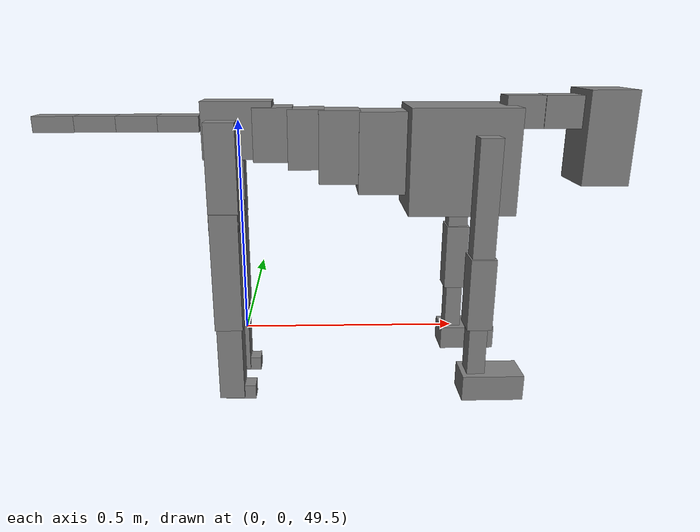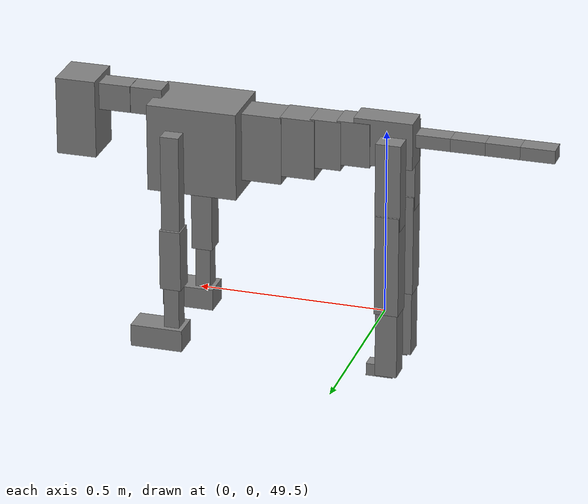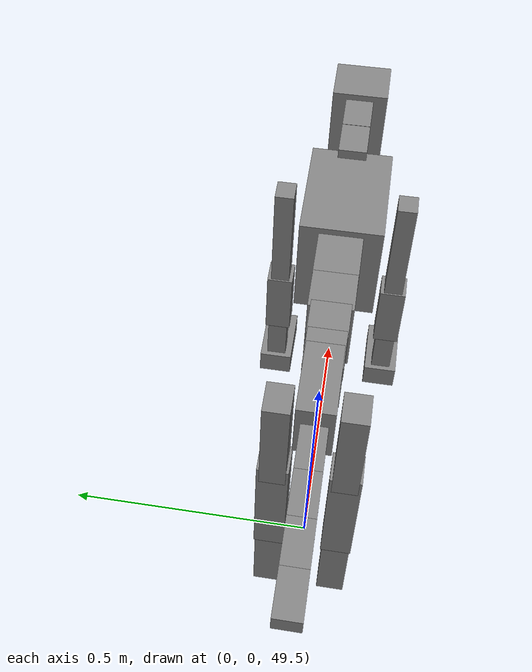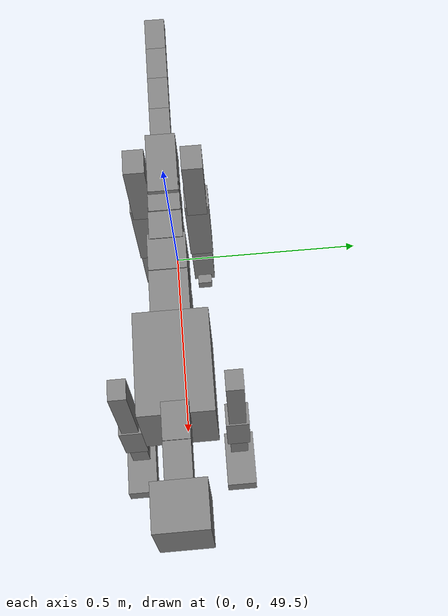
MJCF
<mujoco model="dog">

    <default>
        <joint armature="0.02" stiffness="1" damping="0.2" limited="true"/>
        <geom condim="3" friction="1 0.05 0.05" margin="0.01"/>
        <motor ctrllimited="true" ctrlrange="-1.0 1.0" forcelimited="true" gear="50"/>
    </default>

    <compiler inertiafromgeom="true" angle="radian"/>

    <option timestep="0.016" iterations="50" tolerance="1e-10" solver="Newton" jacobian="dense" cone="pyramidal"/>

    <size nconmax="20000" njmax="60000" nstack="5000000"/>
    <visual>
        <map force="0.1" zfar="30"/>
        <rgba haze="0.15 0.25 0.35 1"/>
        <quality shadowsize="2048"/>
        <global offwidth="800" offheight="800"/>
    </visual>

    <asset>
        <texture type="skybox" builtin="gradient" rgb1="0.3 0.5 0.7" rgb2="0 0 0" width="512" height="512"/>
        <texture name="texplane" type="2d" builtin="checker" rgb1=".2 .3 .4" rgb2=".1 0.15 0.2" width="512" height="512"
                 mark="cross" markrgb=".8 .8 .8"/>
        <texture name="texgeom" type="cube" builtin="flat" mark="cross" width="127" height="1278" rgb1="0.8 0.6 0.4"
                 rgb2="0.8 0.6 0.4" markrgb="1 1 1" random="0.01"/>

        <material name="matplane" reflectance="0.3" texture="texplane" texrepeat="1 1" texuniform="true"/>
        <material name="matgeom" texture="texgeom" texuniform="true" rgba="0.8 0.6 .4 1"/>
    </asset>

    <worldbody>
        <geom name="floor" pos="0 0 0" size="0 0 .25" type="plane" material="matplane" condim="3"/>

        <light directional="false" diffuse=".2 .2 .2" specular="0 0 0" pos="0 0 5" dir="0 0 -1" castshadow="false"/>
        <light mode="targetbodycom" target="torso" directional="false" diffuse=".8 .8 .8" specular="0.3 0.3 0.3"
               pos="0 0 4.0" dir="0 0 -1"/>

        <body name="root" pos="0 0 50">
            <freejoint name="root_1"/>
            <geom type="box" pos="0 0 -0.02" size="0.0774  0.0358  0.063" density="2030"/>

            <body name="spine1" pos="0.054 0 0">
                <joint name="spine1_y" axis="0 1 0" range="0 0.7" limited="true"/>
                <geom type="box" pos="0.02375 0 -0.03" size="0.04375  0.0375  0.05985" density="2030"/>

                <body name="spine2" pos="0.0612 0 0">
                    <joint name="spine2_y" axis="0 1 0" range="-0.15 0.15" limited="true"/>
                    <geom type="box" pos="0.03555  0  -0.04" size="0.04055  0.039  0.06615" density="2030"/>

                    <body name="spine3" pos="0.0730 0 0">
                        <joint name="spine3_y" axis="0 1 0" range="-0.15 0.15" limited="true"/>
                        <geom type="box" pos="0.03555  0  -0.057" size="0.04555  0.0445  0.081" density="2030"/>

                        <body name="spine4" pos="0.0780 0 0">
                            <joint name="spine4_y" axis="0 1 0" range="-0.15 0.15" limited="true"/>
                            <geom type="box" pos="0.05265  0  -0.07" size="0.05265  0.045  0.09135" density="2030"/>

                            <body name="torso" pos="0.1082 0 0">
                                <joint name="torso_y" axis="0 1 0" range="-0.15 0.15" limited="true"/>
                                <geom type="box" pos="0.11925  0  -0.085" size="0.11925  0.085  0.11745"
                                      density="2030"/>

                                <body name="neck1" pos="0.2160  0   0.0180">
                                    <joint name="neck1_y" axis="0 1 0" range="-1.2  -1" limited="true"/>
                                    <geom type="box" pos="0.0423  0  0" size="0.0423  0.03  0.036" density="2325"/>

                                    <body name="neck2" pos="0.0853  0  0">
                                        <joint name="neck2_y" axis="0 1 0" range="0.1  0" limited="true"/>
                                        <geom type="box" pos="0.0423  0  0" size="0.0423  0.03  0.036" density="2325"/>

                                        <body name="head" pos="0.0853  0  0">
                                            <joint name="head_y" axis="0 1 0" range="-0.3  -0.2" limited="true"/>
                                            <geom type="box" pos="0.0531  0  -0.055" size="0.0531  0.06  0.1044"
                                                  density="4030"/>

                                        </body>
                                    </body>
                                </body>

                                <body name="front_shoulder" pos="0.156  0   -0.0480">
                                    <joint name="front_shoulder_y" axis="0 1 0" range="-1 1.5" limited="true"/>
                                    <geom type="box" pos="0 0.13 -0.1159" size="0.0243  0.0208  0.1425" density="1158"/>
                                    <geom type="box" pos="0 -0.13 -0.1159" size="0.0243  0.0208  0.1425"
                                          density="1158"/>

                                    <body name="front_elbow" pos="0  0  -0.2318">
                                        <joint name="front_elbow_y" axis="0 1 0" range="-2 0" limited="true"/>
                                        <geom type="box" pos="0 0.13 -0.0817" size="0.0280  0.0287  0.0817"
                                              density="1081"/>
                                        <geom type="box" pos="0 -0.13 -0.0817" size="0.0280  0.0287  0.0817"
                                              density="1081"/>

                                        <body name="front_wrist" pos="0  0  -0.1633">
                                            <joint name="front_wrist_y" axis="0 1 0" range="-0.2 0" limited="true"/>
                                            <geom type="box" pos="0 0.13 -0.0628" size="0.0201  0.0224  0.0760"
                                                  density="1664"/>
                                            <geom type="box" pos="0 -0.13 -0.0628" size="0.0201  0.0224  0.0760"
                                                  density="1664"/>

                                            <body name="front_finger_end" pos="0  0  -0.1256">
                                                <joint name="front_finger_y" axis="0 1 0" range="-0.4 1"
                                                       limited="true"/>
                                                <geom type="box" pos="0.0378  0.13  -0.0145"
                                                      size="0.0694  0.0378  0.0295" density="1515"/>
                                                <geom type="box" pos="0.0378  -0.13  -0.0145"
                                                      size="0.0694  0.0378  0.0295" density="1515"/>

                                            </body>

                                        </body>
                                    </body>
                                </body>

                            </body>
                        </body>
                    </body>
                </body>
            </body>

            <body name="back_hip" pos="-0.03 0 -0.018">
                <joint name="back_hip_y" axis="0 1 0" range="-1.5 0.3" limited="true"/>
                <geom type="box" pos="0 0.07 -0.0946" size="0.0330  0.0259  0.1174" density="1154"/>
                <geom type="box" pos="0 -0.07 -0.0946" size="0.0330  0.0259  0.1174" density="1154"/>

                <body name="back_knee" pos="0  0  -0.1892">
                    <joint name="back_knee_y" axis="0 1 0" range="0 2.8" limited="true"/>
                    <geom type="box" pos="0 0.07 -0.1211" size="0.0316  0.0312  0.1366" density="1227"/>
                    <geom type="box" pos="0 -0.07 -0.1211" size="0.0316  0.0312  0.1366" density="1227"/>

                    <body name="back_ankle" pos="0  0  -0.2421">
                        <joint name="back_ankle_y" axis="0 1 0" range="-2.2 0" limited="true"/>
                        <geom type="box" pos="0 0.07 -0.0898" size="0.0288  0.0288  0.1010" density="1284"/>
                        <geom type="box" pos="0 -0.07 -0.0898" size="0.0288  0.0288  0.1010" density="1284"/>

                        <body name="back_toe_end" pos="0  0  -0.1796">
                            <joint name="back_toe_y" axis="0 1 0" range="-0.4 1" limited="true"/>
                            <geom type="box" pos="0.0194  0.07  -0.0019" size="0.0355  0.0194  0.0169" density="1515"/>
                            <geom type="box" pos="0.0194  -0.07  -0.0019" size="0.0355  0.0194  0.0169" density="1515"/>

                        </body>
                    </body>
                </body>
            </body>

            <body name="tail1" pos="-0.074 0 -0.006">
                <joint name="tail1_y" axis="0 1 0" range="-0.2 0.2" limited="true"/>
                <geom type="box" pos="-0.0536  0  0" size="0.045  0.025  0.0175" density="1587"/>

                <body name="tail2" pos="-0.09 0 0">
                    <joint name="tail2_y" axis="0 1 0" range="-0.2 0.2" limited="true"/>
                    <geom type="box" pos="-0.0536  0  0" size="0.045  0.025  0.0175" density="1587"/>

                    <body name="tail3" pos="-0.09 0 0">
                        <joint name="tail3_y" axis="0 1 0" range="-0.2 0.2" limited="true"/>
                        <geom type="box" pos="-0.0536  0  0" size="0.045  0.025  0.0175" density="1587"/>

                        <body name="tail4" pos="-0.09 0 0">
                            <joint name="tail4_y" axis="0 1 0" range="-0.2 0.2" limited="true"/>
                            <geom type="box" pos="-0.0536  0  0" size="0.045  0.025  0.0175" density="1587"/>

                        </body>
                    </body>
                </body>
            </body>
        </body>
    </worldbody>

    <actuator>
        <motor joint="spine1_y" forcerange="-150 150     "/>
        <motor joint="spine2_y" forcerange="-150 150     "/>
        <motor joint="spine3_y" forcerange="-150 150     "/>
        <motor joint="spine4_y" forcerange="-150 150     "/>
        <motor joint="torso_y" forcerange="-150 150     "/>
        <motor joint="neck1_y" forcerange="-100 100       "/>
        <motor joint="neck2_y" forcerange="-100 100       "/>
        <motor joint="head_y" forcerange="-150 150       "/>
        <motor joint="front_shoulder_y" forcerange="-120.22 118.33"/>
        <motor joint="front_elbow_y" forcerange="-189.81 118.67"/>
        <motor joint="front_wrist_y" forcerange="-72.37 106.58"/>
        <motor joint="front_finger_y" forcerange="-97.89 63.93"/>
        <motor joint="back_hip_y" forcerange="-330.82 213.99"/>
        <motor joint="back_knee_y" forcerange="-256.66 396.50"/>
        <motor joint="back_angle_y" forcerange="-210.99 149.90"/>
        <motor joint="back_toe_y" forcerange="-26.86 47.96"/>
        <motor joint="tail1_y" forcerange="-50 50     "/>
        <motor joint="tail2_y" forcerange="-50 50     "/>
        <motor joint="tail3_y" forcerange="-50 50     "/>
        <motor joint="tail4_y" forcerange="-50 50     "/>
    </actuator>
</mujoco>
